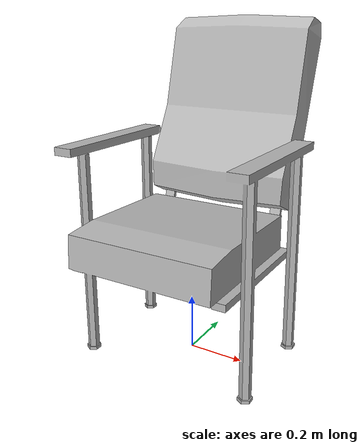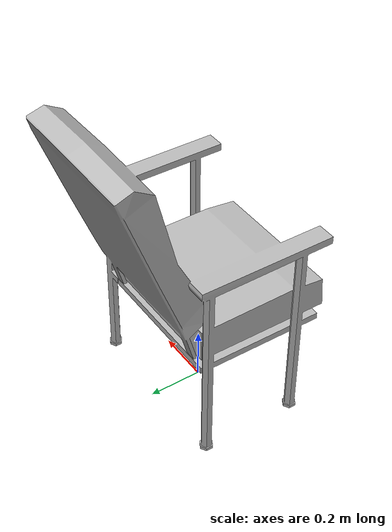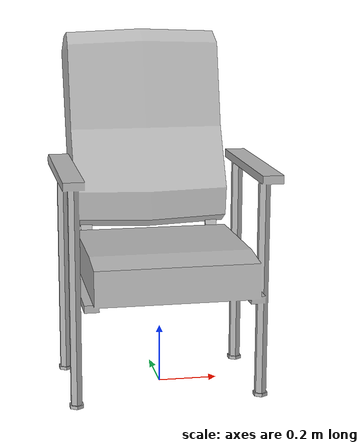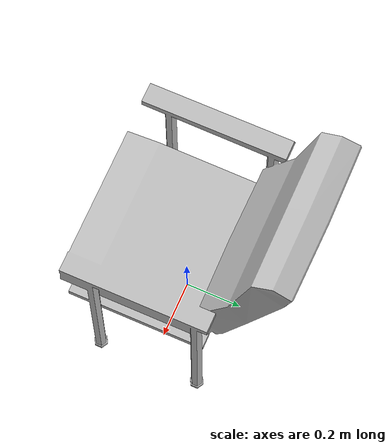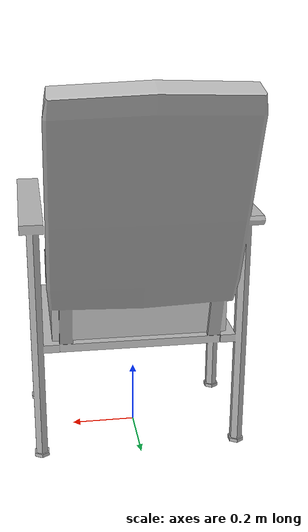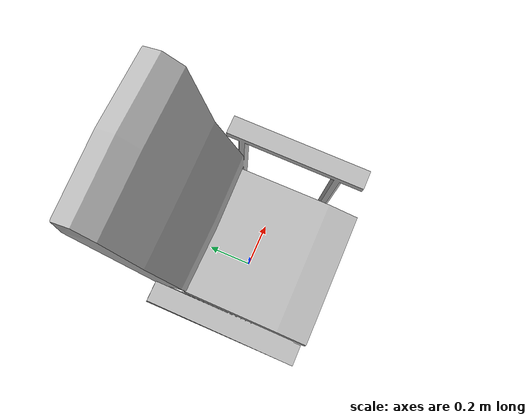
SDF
<sdf version="1.6">
  <model name="VisitorChair">
   <static>true</static>
    <link name="body">
      <pose>0 0 0 0 0 0</pose>

      <visual name="visual">
        <geometry>
          <mesh>
            <uri>model://VisitorChair/meshes/VisitorChair.obj</uri>
          </mesh>
        </geometry>
      </visual>

      <collision name="collision">
        <geometry>
          <mesh>
            <uri>model://VisitorChair/meshes/VisitorChair_Col.obj</uri>
          </mesh>
        </geometry>
      </collision>

    </link>
  </model>
</sdf>
